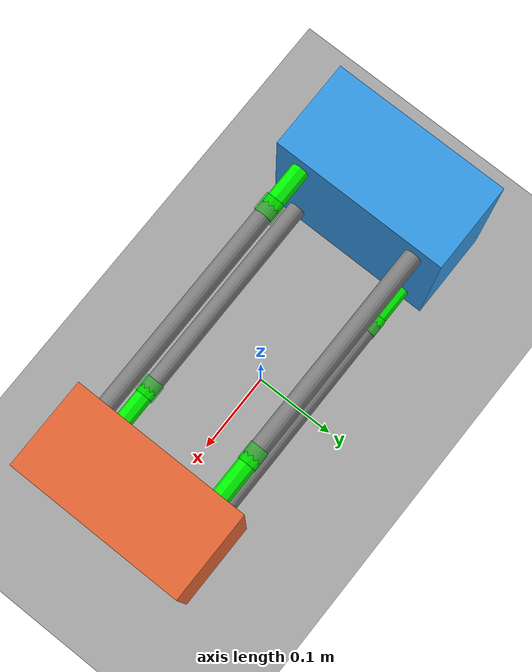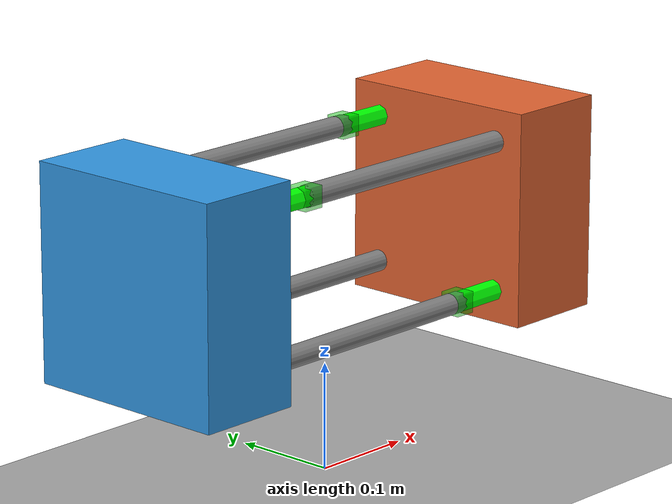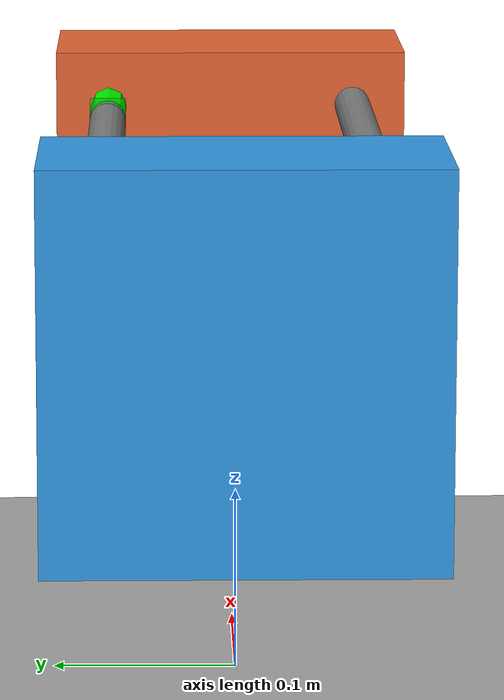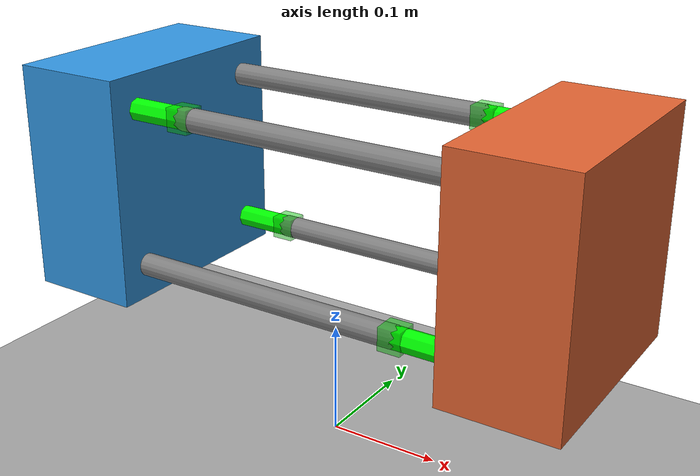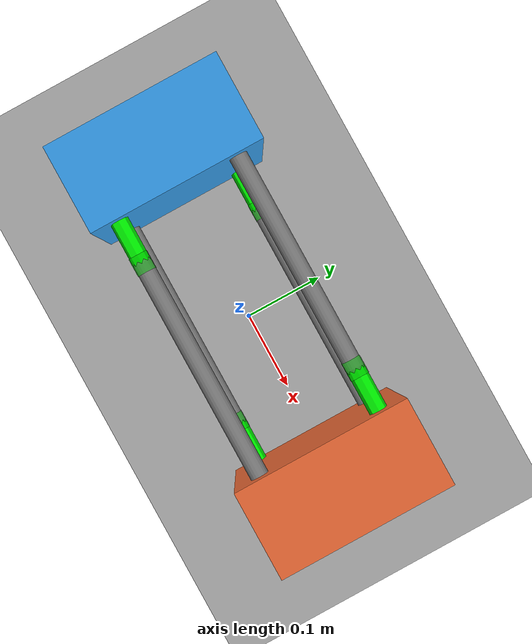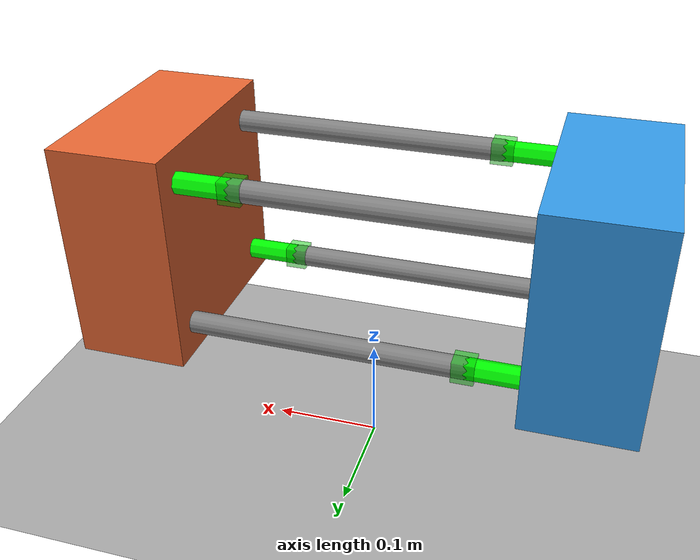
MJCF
<mujoco model="spring_tendon_variant">
  <option timestep="0.001" solver="Newton" iterations="50"/>
  <size njmax="500" nconmax="100"/>

  <asset>
    <texture name="grid" type="2d" builtin="checker" width="300" height="300"
             rgb1="0.8 0.8 0.8" rgb2="0.5 0.5 0.5" mark="edge" markrgb="0.2 0.2 0.2"/>
    <material name="gridmat" texture="grid" texrepeat="5 5" reflectance="0.1"/>
  </asset>

  <default>
    <!-- Default class for actuator sliders -->
    <joint type="slide" range="-0.2 0.2" damping="1" armature="0.01"/>
    <general ctrlrange="-1 1" biastype="affine" gainprm="10 0 0" biasprm="0 0 -10"/>
  </default>

  <worldbody>
    <geom name="floor" type="plane" size="5 5 0.1" material="gridmat" friction="2 0.2 0.01"/>

    <!-- Block A -->
    <body name="block_a" pos="-0.2 0 0.22">
      <freejoint/>
      <geom type="box" size="0.05 0.1 0.1" density="500" friction="2 0.2 0.01" rgba="0.2 0.6 0.9 1"/>

      <site name="site2b" pos="0.05 -0.07 0.07"/>
      <site name="site4b" pos="0.05 0.07 -0.07"/>

      <!-- Spring 1 A -->
      <body name="spring_1a" pos="0.05 0.07 0.07">
        <joint name="spring1a_hinge" type="hinge" axis="1 0 0" damping="1.0" limited="true" range="-45 45"/>
        <geom type="capsule" fromto="0 0 0 0.25 0 0" size="0.01" density="100"/>
        <site name="siteM1a" pos="0.25 0.0 0.0"/>

        <!-- Linear actuator to control siteM1a position -->
        <body name="slider1_body" pos="0.25 0 0">
          <joint name="slider1" axis="1 0 0"/>
          <geom name="slider1_geom" type="box" size="0.01 0.01 0.01" rgba="0 0.8 0 0.5"/>
          <site name="slider1_site" pos="0 0 0"/>
        </body>
      </body>

      <!-- Spring 3 A -->
      <body name="spring_3a" pos="0.05 -0.07 -0.07">
        <joint name="spring3a_hinge" type="hinge" axis="1 0 0" damping="1.0" limited="true" range="-45 45"/>
        <geom type="capsule" fromto="0 0 0 0.25 0 0" size="0.01" density="100"/>
        <site name="siteM3a" pos="0.25 -0.0 -0.0"/>

        <!-- Linear actuator to control siteM3a position -->
        <body name="slider3_body" pos="0.25 0 0">
          <joint name="slider3" axis="1 0 0"/>
          <geom name="slider3_geom" type="box" size="0.01 0.01 0.01" rgba="0 0.8 0 0.5"/>
          <site name="slider3_site" pos="0 0 0"/>
        </body>
      </body>
    </body>

    <!-- Block B -->
    <body name="block_b" pos="0.2 0 0.22">
      <freejoint/>
      <geom type="box" size="0.05 0.1 0.1" density="500" friction="2 0.2 0.01" rgba="0.9 0.4 0.2 1"/>

      <site name="site1b" pos="-0.05 0.07 0.07"/>
      <site name="site3b" pos="-0.05 -0.07 -0.07"/>

      <!-- Spring 2 A -->
      <body name="spring_2a" pos="-0.05 -0.07 0.07">
        <joint name="spring2a_hinge" type="hinge" axis="1 0 0" damping="1.0" limited="true" range="-45 45"/>
        <geom type="capsule" fromto="0 0 0 -0.25 0 0" size="0.01" density="100"/>
        <site name="siteM2a" pos="-0.25 -0.0 0.0"/>

        <!-- Linear actuator to control siteM2a position -->
        <body name="slider2_body" pos="-0.25 0 0">
          <joint name="slider2" axis="1 0 0"/>
          <geom name="slider2_geom" type="box" size="0.01 0.01 0.01" rgba="0 0.8 0 0.5"/>
          <site name="slider2_site" pos="0 0 0"/>
        </body>
      </body>

      <!-- Spring 4 A -->
      <body name="spring_4a" pos="-0.05 0.07 -0.07">
        <joint name="spring4a_hinge" type="hinge" axis="1 0 0" damping="1.0" limited="true" range="-45 45"/>
        <geom type="capsule" fromto="0 0 0 -0.25 0 0" size="0.01" density="100"/>
        <site name="siteM4a" pos="-0.25 0.0 -0.0"/>

        <!-- Linear actuator to control siteM4a position -->
        <body name="slider4_body" pos="-0.25 0 0">
          <joint name="slider4" axis="1 0 0"/>
          <geom name="slider4_geom" type="box" size="0.01 0.01 0.01" rgba="0 0.8 0 0.5"/>
          <site name="slider4_site" pos="0 0 0"/>
        </body>
      </body>
    </body>
  </worldbody>

  <actuator>
    <!-- Original rotary actuators -->
    <motor name="spring1a_motor" joint="spring1a_hinge" gear="0.05" ctrlrange="-5 5"/>
    <motor name="spring2a_motor" joint="spring2a_hinge" gear="0.05" ctrlrange="-5 5"/>
    <motor name="spring3a_motor" joint="spring3a_hinge" gear="0.05" ctrlrange="-5 5"/>
    <motor name="spring4a_motor" joint="spring4a_hinge" gear="0.05" ctrlrange="-5 5"/>

    <!-- Linear actuators to adjust tendon lengths -->
    <position name="tendon1_actuator" joint="slider1" kp="10" ctrlrange="-0.2 0.2"/>
    <position name="tendon2_actuator" joint="slider2" kp="10" ctrlrange="-0.2 0.2"/>
    <position name="tendon3_actuator" joint="slider3" kp="10" ctrlrange="-0.2 0.2"/>
    <position name="tendon4_actuator" joint="slider4" kp="10" ctrlrange="-0.2 0.2"/>

    <!-- Tension feedback controllers for each tendon -->
    <general name="tension1_control" joint="slider1" dyntype="filter" dynprm="0.1" gaintype="user" gainprm="5 0 0" biastype="user" biasprm="0 0 0"/>
    <general name="tension2_control" joint="slider2" dyntype="filter" dynprm="0.1" gaintype="user" gainprm="5 0 0" biastype="user" biasprm="0 0 0"/>
    <general name="tension3_control" joint="slider3" dyntype="filter" dynprm="0.1" gaintype="user" gainprm="5 0 0" biastype="user" biasprm="0 0 0"/>
    <general name="tension4_control" joint="slider4" dyntype="filter" dynprm="0.1" gaintype="user" gainprm="5 0 0" biastype="user" biasprm="0 0 0"/>
  </actuator>

  <tendon>
    <spatial name="inter1" width="0.01" rgba="0 1 0 1" stiffness="10" damping="5" springlength="0.4" range="0.2 0.6">
        <site site="slider1_site"/>
        <site site="site1b"/>
    </spatial>
    <spatial name="inter2" width="0.01" rgba="0 1 0 1" stiffness="10" damping="5" springlength="0.4" range="0.2 0.6">
        <site site="slider2_site"/>
        <site site="site2b"/>
    </spatial>
    <spatial name="inter3" width="0.01" rgba="0 1 0 1" stiffness="10" damping="5" springlength="0.4" range="0.2 0.6">
        <site site="slider3_site"/>
        <site site="site3b"/>
    </spatial>
    <spatial name="inter4" width="0.01" rgba="0 1 0 1" stiffness="10" damping="5" springlength="0.4" range="0.2 0.6">
        <site site="slider4_site"/>
        <site site="site4b"/>
    </spatial>
  </tendon>

  <!-- Sensors to monitor tendon tension and length -->
  <sensor>
    <tendonpos name="tendon1_pos" tendon="inter1"/>
    <tendonpos name="tendon2_pos" tendon="inter2"/>
    <tendonpos name="tendon3_pos" tendon="inter3"/>
    <tendonpos name="tendon4_pos" tendon="inter4"/>

    <tendonvel name="tendon1_vel" tendon="inter1"/>
    <tendonvel name="tendon2_vel" tendon="inter2"/>
    <tendonvel name="tendon3_vel" tendon="inter3"/>
    <tendonvel name="tendon4_vel" tendon="inter4"/>

  </sensor>

  <!-- Define keyframes for resetting tendons to natural length -->
  <keyframe>
    <!-- Keyframe to reset all tendons to natural lengths -->
    <key name="reset_tendons" qpos="0 0 0 0 0 0 0 0 0 0 0 0 0 0 0 0 0 0 0 0 0 0" time="0.5"/>
  </keyframe>
</mujoco>
